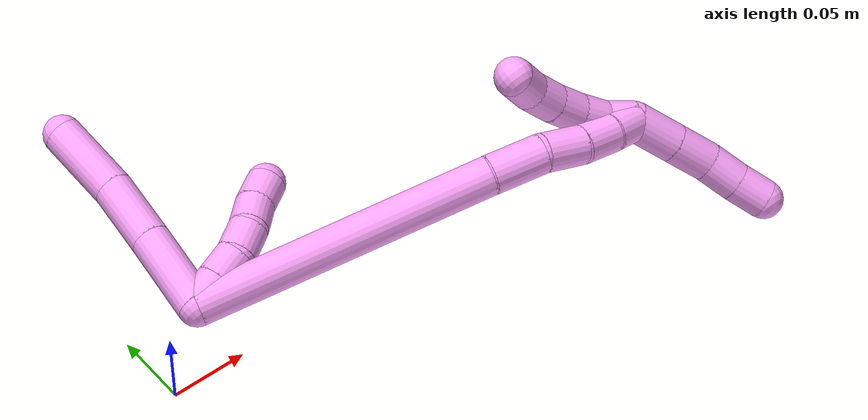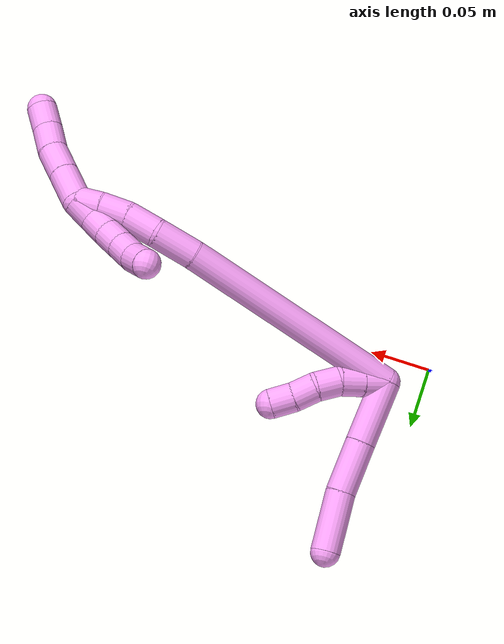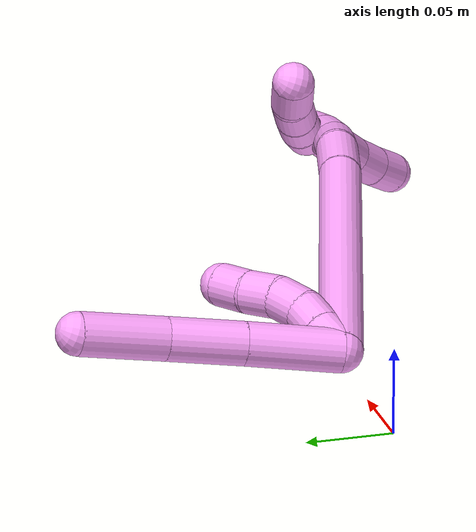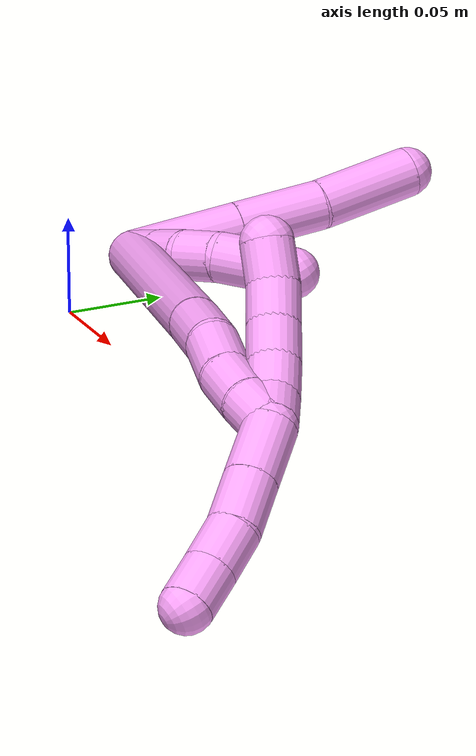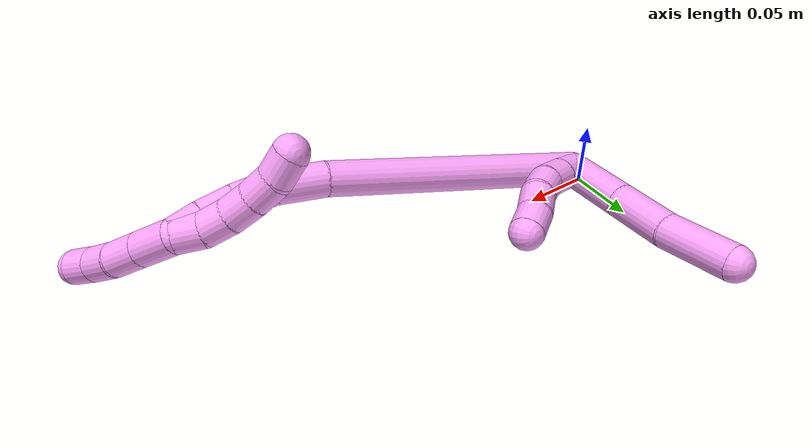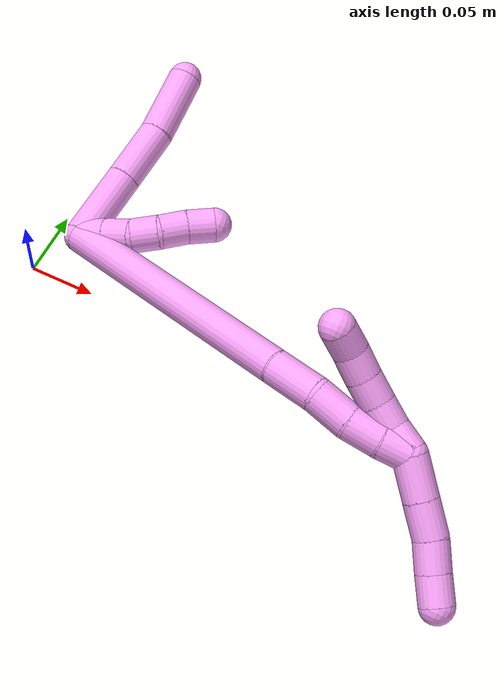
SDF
<sdf version="1.7">
 <world name="default">
  <model name="4">
   <static>0</static>
   <link name="4">
    <collision name="collision-cylinder-e_1_2_8">
     <pose>0.007211 0.00236 0.026304 -0.089463 0.266559 -0.012003</pose>
     <geometry><cylinder><radius>0.0125</radius><length>0.054753</length></cylinder></geometry>
     <surface>
      <friction><ode><mu>1.16</mu><mu2>1.16</mu2><slip1>0</slip1><slip2>0</slip2></ode></friction>
      <contact><ode><kp>1e+06</kp><kd>1</kd><max_vel>0</max_vel><min_depth>0.001</min_depth></ode></contact>
     </surface>
    </collision>
    <visual name="visual-cylinder-e_1_2_8">
     <pose>0.007211 0.00236 0.026304 -0.089463 0.266559 -0.012003</pose>
     <geometry><cylinder><radius>0.0125</radius><length>0.054753</length></cylinder></geometry>
     <material><ambient>1 0.65098 0.996078 1</ambient></material>
    </visual>
    <collision name="collision-cylinder-e_2_8_9">
     <pose>0.020268 0.006941 0.073887 -0.104063 0.266716 -0.013973</pose>
     <geometry><cylinder><radius>0.0125</radius><length>0.044359</length></cylinder></geometry>
     <surface>
      <friction><ode><mu>1.16</mu><mu2>1.16</mu2><slip1>0</slip1><slip2>0</slip2></ode></friction>
      <contact><ode><kp>1e+06</kp><kd>1</kd><max_vel>0</max_vel><min_depth>0.001</min_depth></ode></contact>
     </surface>
    </collision>
    <visual name="visual-cylinder-e_2_8_9">
     <pose>0.020268 0.006941 0.073887 -0.104063 0.266716 -0.013973</pose>
     <geometry><cylinder><radius>0.0125</radius><length>0.044359</length></cylinder></geometry>
     <material><ambient>1 0.65098 0.996078 1</ambient></material>
    </visual>
    <collision name="collision-cylinder-e_3_9_6">
     <pose>0.029873 0.013444 0.119965 -0.17092 0.148262 -0.012725</pose>
     <geometry><cylinder><radius>0.0125</radius><length>0.050889</length></cylinder></geometry>
     <surface>
      <friction><ode><mu>1.16</mu><mu2>1.16</mu2><slip1>0</slip1><slip2>0</slip2></ode></friction>
      <contact><ode><kp>1e+06</kp><kd>1</kd><max_vel>0</max_vel><min_depth>0.001</min_depth></ode></contact>
     </surface>
    </collision>
    <visual name="visual-cylinder-e_3_9_6">
     <pose>0.029873 0.013444 0.119965 -0.17092 0.148262 -0.012725</pose>
     <geometry><cylinder><radius>0.0125</radius><length>0.050889</length></cylinder></geometry>
     <material><ambient>1 0.65098 0.996078 1</ambient></material>
    </visual>
    <collision name="collision-cylinder-e_1_2_10">
     <pose>0.005202 -0.007824 0.003423 1.15841 0.547137 0.363008</pose>
     <geometry><cylinder><radius>0.0125</radius><length>0.02</length></cylinder></geometry>
     <surface>
      <friction><ode><mu>1.16</mu><mu2>1.16</mu2><slip1>0</slip1><slip2>0</slip2></ode></friction>
      <contact><ode><kp>1e+06</kp><kd>1</kd><max_vel>0</max_vel><min_depth>0.001</min_depth></ode></contact>
     </surface>
    </collision>
    <visual name="visual-cylinder-e_1_2_10">
     <pose>0.005202 -0.007824 0.003423 1.15841 0.547137 0.363008</pose>
     <geometry><cylinder><radius>0.0125</radius><length>0.02</length></cylinder></geometry>
     <material><ambient>1 0.65098 0.996078 1</ambient></material>
    </visual>
    <collision name="collision-cylinder-e_2_10_11">
     <pose>0.015618 -0.023581 0.009991 1.19337 0.548446 0.377626</pose>
     <geometry><cylinder><radius>0.0125</radius><length>0.02</length></cylinder></geometry>
     <surface>
      <friction><ode><mu>1.16</mu><mu2>1.16</mu2><slip1>0</slip1><slip2>0</slip2></ode></friction>
      <contact><ode><kp>1e+06</kp><kd>1</kd><max_vel>0</max_vel><min_depth>0.001</min_depth></ode></contact>
     </surface>
    </collision>
    <visual name="visual-cylinder-e_2_10_11">
     <pose>0.015618 -0.023581 0.009991 1.19337 0.548446 0.377626</pose>
     <geometry><cylinder><radius>0.0125</radius><length>0.02</length></cylinder></geometry>
     <material><ambient>1 0.65098 0.996078 1</ambient></material>
    </visual>
    <collision name="collision-cylinder-e_3_11_12">
     <pose>0.027105 -0.037391 0.018244 0.855203 0.678118 0.31872</pose>
     <geometry><cylinder><radius>0.0125</radius><length>0.02</length></cylinder></geometry>
     <surface>
      <friction><ode><mu>1.16</mu><mu2>1.16</mu2><slip1>0</slip1><slip2>0</slip2></ode></friction>
      <contact><ode><kp>1e+06</kp><kd>1</kd><max_vel>0</max_vel><min_depth>0.001</min_depth></ode></contact>
     </surface>
    </collision>
    <visual name="visual-cylinder-e_3_11_12">
     <pose>0.027105 -0.037391 0.018244 0.855203 0.678118 0.31872</pose>
     <geometry><cylinder><radius>0.0125</radius><length>0.02</length></cylinder></geometry>
     <material><ambient>1 0.65098 0.996078 1</ambient></material>
    </visual>
    <collision name="collision-cylinder-e_4_12_13">
     <pose>0.040729 -0.04674 0.029178 0.537453 0.825677 0.240085</pose>
     <geometry><cylinder><radius>0.0125</radius><length>0.02</length></cylinder></geometry>
     <surface>
      <friction><ode><mu>1.16</mu><mu2>1.16</mu2><slip1>0</slip1><slip2>0</slip2></ode></friction>
      <contact><ode><kp>1e+06</kp><kd>1</kd><max_vel>0</max_vel><min_depth>0.001</min_depth></ode></contact>
     </surface>
    </collision>
    <visual name="visual-cylinder-e_4_12_13">
     <pose>0.040729 -0.04674 0.029178 0.537453 0.825677 0.240085</pose>
     <geometry><cylinder><radius>0.0125</radius><length>0.02</length></cylinder></geometry>
     <material><ambient>1 0.65098 0.996078 1</ambient></material>
    </visual>
    <collision name="collision-cylinder-e_5_13_5">
     <pose>0.055577 -0.054769 0.039799 0.759939 0.84773 0.356584</pose>
     <geometry><cylinder><radius>0.0125</radius><length>0.02</length></cylinder></geometry>
     <surface>
      <friction><ode><mu>1.16</mu><mu2>1.16</mu2><slip1>0</slip1><slip2>0</slip2></ode></friction>
      <contact><ode><kp>1e+06</kp><kd>1</kd><max_vel>0</max_vel><min_depth>0.001</min_depth></ode></contact>
     </surface>
    </collision>
    <visual name="visual-cylinder-e_5_13_5">
     <pose>0.055577 -0.054769 0.039799 0.759939 0.84773 0.356584</pose>
     <geometry><cylinder><radius>0.0125</radius><length>0.02</length></cylinder></geometry>
     <material><ambient>1 0.65098 0.996078 1</ambient></material>
    </visual>
    <collision name="collision-cylinder-e_1_2_14">
     <pose>0.041147 -0.085035 -0.018938 1.78993 0.441253 0.545499</pose>
     <geometry><cylinder><radius>0.0125</radius><length>0.192693</length></cylinder></geometry>
     <surface>
      <friction><ode><mu>1.16</mu><mu2>1.16</mu2><slip1>0</slip1><slip2>0</slip2></ode></friction>
      <contact><ode><kp>1e+06</kp><kd>1</kd><max_vel>0</max_vel><min_depth>0.001</min_depth></ode></contact>
     </surface>
    </collision>
    <visual name="visual-cylinder-e_1_2_14">
     <pose>0.041147 -0.085035 -0.018938 1.78993 0.441253 0.545499</pose>
     <geometry><cylinder><radius>0.0125</radius><length>0.192693</length></cylinder></geometry>
     <material><ambient>1 0.65098 0.996078 1</ambient></material>
    </visual>
    <collision name="collision-cylinder-e_2_14_15">
     <pose>0.091527 -0.184734 -0.041274 1.79851 0.550214 0.682517</pose>
     <geometry><cylinder><radius>0.0125</radius><length>0.035317</length></cylinder></geometry>
     <surface>
      <friction><ode><mu>1.16</mu><mu2>1.16</mu2><slip1>0</slip1><slip2>0</slip2></ode></friction>
      <contact><ode><kp>1e+06</kp><kd>1</kd><max_vel>0</max_vel><min_depth>0.001</min_depth></ode></contact>
     </surface>
    </collision>
    <visual name="visual-cylinder-e_2_14_15">
     <pose>0.091527 -0.184734 -0.041274 1.79851 0.550214 0.682517</pose>
     <geometry><cylinder><radius>0.0125</radius><length>0.035317</length></cylinder></geometry>
     <material><ambient>1 0.65098 0.996078 1</ambient></material>
    </visual>
    <collision name="collision-cylinder-e_3_15_16">
     <pose>0.110274 -0.208289 -0.048612 1.98789 0.774402 1.11965</pose>
     <geometry><cylinder><radius>0.0125</radius><length>0.027209</length></cylinder></geometry>
     <surface>
      <friction><ode><mu>1.16</mu><mu2>1.16</mu2><slip1>0</slip1><slip2>0</slip2></ode></friction>
      <contact><ode><kp>1e+06</kp><kd>1</kd><max_vel>0</max_vel><min_depth>0.001</min_depth></ode></contact>
     </surface>
    </collision>
    <visual name="visual-cylinder-e_3_15_16">
     <pose>0.110274 -0.208289 -0.048612 1.98789 0.774402 1.11965</pose>
     <geometry><cylinder><radius>0.0125</radius><length>0.027209</length></cylinder></geometry>
     <material><ambient>1 0.65098 0.996078 1</ambient></material>
    </visual>
    <collision name="collision-cylinder-e_4_16_17">
     <pose>0.128809 -0.224875 -0.053967 1.7527 0.856438 1.00274</pose>
     <geometry><cylinder><radius>0.0125</radius><length>0.023884</length></cylinder></geometry>
     <surface>
      <friction><ode><mu>1.16</mu><mu2>1.16</mu2><slip1>0</slip1><slip2>0</slip2></ode></friction>
      <contact><ode><kp>1e+06</kp><kd>1</kd><max_vel>0</max_vel><min_depth>0.001</min_depth></ode></contact>
     </surface>
    </collision>
    <visual name="visual-cylinder-e_4_16_17">
     <pose>0.128809 -0.224875 -0.053967 1.7527 0.856438 1.00274</pose>
     <geometry><cylinder><radius>0.0125</radius><length>0.023884</length></cylinder></geometry>
     <material><ambient>1 0.65098 0.996078 1</ambient></material>
    </visual>
    <collision name="collision-cylinder-e_5_17_1">
     <pose>0.146253 -0.238741 -0.055791 1.63703 0.937268 0.991724</pose>
     <geometry><cylinder><radius>0.0125</radius><length>0.020897</length></cylinder></geometry>
     <surface>
      <friction><ode><mu>1.16</mu><mu2>1.16</mu2><slip1>0</slip1><slip2>0</slip2></ode></friction>
      <contact><ode><kp>1e+06</kp><kd>1</kd><max_vel>0</max_vel><min_depth>0.001</min_depth></ode></contact>
     </surface>
    </collision>
    <visual name="visual-cylinder-e_5_17_1">
     <pose>0.146253 -0.238741 -0.055791 1.63703 0.937268 0.991724</pose>
     <geometry><cylinder><radius>0.0125</radius><length>0.020897</length></cylinder></geometry>
     <material><ambient>1 0.65098 0.996078 1</ambient></material>
    </visual>
    <collision name="collision-cylinder-e_1_1_18">
     <pose>0.148992 -0.238603 -0.050918 -0.873807 -0.604257 0.289072</pose>
     <geometry><cylinder><radius>0.0125</radius><length>0.02</length></cylinder></geometry>
     <surface>
      <friction><ode><mu>1.16</mu><mu2>1.16</mu2><slip1>0</slip1><slip2>0</slip2></ode></friction>
      <contact><ode><kp>1e+06</kp><kd>1</kd><max_vel>0</max_vel><min_depth>0.001</min_depth></ode></contact>
     </surface>
    </collision>
    <visual name="visual-cylinder-e_1_1_18">
     <pose>0.148992 -0.238603 -0.050918 -0.873807 -0.604257 0.289072</pose>
     <geometry><cylinder><radius>0.0125</radius><length>0.02</length></cylinder></geometry>
     <material><ambient>1 0.65098 0.996078 1</ambient></material>
    </visual>
    <collision name="collision-cylinder-e_2_18_19">
     <pose>0.136021 -0.22879 -0.039753 -0.537061 -0.816709 0.237009</pose>
     <geometry><cylinder><radius>0.0125</radius><length>0.02</length></cylinder></geometry>
     <surface>
      <friction><ode><mu>1.16</mu><mu2>1.16</mu2><slip1>0</slip1><slip2>0</slip2></ode></friction>
      <contact><ode><kp>1e+06</kp><kd>1</kd><max_vel>0</max_vel><min_depth>0.001</min_depth></ode></contact>
     </surface>
    </collision>
    <visual name="visual-cylinder-e_2_18_19">
     <pose>0.136021 -0.22879 -0.039753 -0.537061 -0.816709 0.237009</pose>
     <geometry><cylinder><radius>0.0125</radius><length>0.02</length></cylinder></geometry>
     <material><ambient>1 0.65098 0.996078 1</ambient></material>
    </visual>
    <collision name="collision-cylinder-e_3_19_20">
     <pose>0.120832 -0.222998 -0.028184 -0.382677 -0.910856 0.189178</pose>
     <geometry><cylinder><radius>0.0125</radius><length>0.02</length></cylinder></geometry>
     <surface>
      <friction><ode><mu>1.16</mu><mu2>1.16</mu2><slip1>0</slip1><slip2>0</slip2></ode></friction>
      <contact><ode><kp>1e+06</kp><kd>1</kd><max_vel>0</max_vel><min_depth>0.001</min_depth></ode></contact>
     </surface>
    </collision>
    <visual name="visual-cylinder-e_3_19_20">
     <pose>0.120832 -0.222998 -0.028184 -0.382677 -0.910856 0.189178</pose>
     <geometry><cylinder><radius>0.0125</radius><length>0.02</length></cylinder></geometry>
     <material><ambient>1 0.65098 0.996078 1</ambient></material>
    </visual>
    <collision name="collision-cylinder-e_4_20_21">
     <pose>0.104823 -0.219429 -0.016786 -0.220474 -0.945613 0.113111</pose>
     <geometry><cylinder><radius>0.0125</radius><length>0.02</length></cylinder></geometry>
     <surface>
      <friction><ode><mu>1.16</mu><mu2>1.16</mu2><slip1>0</slip1><slip2>0</slip2></ode></friction>
      <contact><ode><kp>1e+06</kp><kd>1</kd><max_vel>0</max_vel><min_depth>0.001</min_depth></ode></contact>
     </surface>
    </collision>
    <visual name="visual-cylinder-e_4_20_21">
     <pose>0.104823 -0.219429 -0.016786 -0.220474 -0.945613 0.113111</pose>
     <geometry><cylinder><radius>0.0125</radius><length>0.02</length></cylinder></geometry>
     <material><ambient>1 0.65098 0.996078 1</ambient></material>
    </visual>
    <collision name="collision-cylinder-e_5_21_4">
     <pose>0.087753 -0.21887 -0.006698 0.163121 -1.11117 -0.101406</pose>
     <geometry><cylinder><radius>0.0125</radius><length>0.02</length></cylinder></geometry>
     <surface>
      <friction><ode><mu>1.16</mu><mu2>1.16</mu2><slip1>0</slip1><slip2>0</slip2></ode></friction>
      <contact><ode><kp>1e+06</kp><kd>1</kd><max_vel>0</max_vel><min_depth>0.001</min_depth></ode></contact>
     </surface>
    </collision>
    <visual name="visual-cylinder-e_5_21_4">
     <pose>0.087753 -0.21887 -0.006698 0.163121 -1.11117 -0.101406</pose>
     <geometry><cylinder><radius>0.0125</radius><length>0.02</length></cylinder></geometry>
     <material><ambient>1 0.65098 0.996078 1</ambient></material>
    </visual>
    <collision name="collision-cylinder-e_1_1_22">
     <pose>0.163302 -0.248673 -0.067965 2.83218 0.609793 2.22144</pose>
     <geometry><cylinder><radius>0.0125</radius><length>0.030132</length></cylinder></geometry>
     <surface>
      <friction><ode><mu>1.16</mu><mu2>1.16</mu2><slip1>0</slip1><slip2>0</slip2></ode></friction>
      <contact><ode><kp>1e+06</kp><kd>1</kd><max_vel>0</max_vel><min_depth>0.001</min_depth></ode></contact>
     </surface>
    </collision>
    <visual name="visual-cylinder-e_1_1_22">
     <pose>0.163302 -0.248673 -0.067965 2.83218 0.609793 2.22144</pose>
     <geometry><cylinder><radius>0.0125</radius><length>0.030132</length></cylinder></geometry>
     <material><ambient>1 0.65098 0.996078 1</ambient></material>
    </visual>
    <collision name="collision-cylinder-e_2_22_23">
     <pose>0.17944 -0.255649 -0.089836 2.83363 0.616125 2.23394</pose>
     <geometry><cylinder><radius>0.0125</radius><length>0.025991</length></cylinder></geometry>
     <surface>
      <friction><ode><mu>1.16</mu><mu2>1.16</mu2><slip1>0</slip1><slip2>0</slip2></ode></friction>
      <contact><ode><kp>1e+06</kp><kd>1</kd><max_vel>0</max_vel><min_depth>0.001</min_depth></ode></contact>
     </surface>
    </collision>
    <visual name="visual-cylinder-e_2_22_23">
     <pose>0.17944 -0.255649 -0.089836 2.83363 0.616125 2.23394</pose>
     <geometry><cylinder><radius>0.0125</radius><length>0.025991</length></cylinder></geometry>
     <material><ambient>1 0.65098 0.996078 1</ambient></material>
    </visual>
    <collision name="collision-cylinder-e_3_23_24">
     <pose>0.19183 -0.261069 -0.109797 2.92148 0.450228 2.24241</pose>
     <geometry><cylinder><radius>0.0125</radius><length>0.022432</length></cylinder></geometry>
     <surface>
      <friction><ode><mu>1.16</mu><mu2>1.16</mu2><slip1>0</slip1><slip2>0</slip2></ode></friction>
      <contact><ode><kp>1e+06</kp><kd>1</kd><max_vel>0</max_vel><min_depth>0.001</min_depth></ode></contact>
     </surface>
    </collision>
    <visual name="visual-cylinder-e_3_23_24">
     <pose>0.19183 -0.261069 -0.109797 2.92148 0.450228 2.24241</pose>
     <geometry><cylinder><radius>0.0125</radius><length>0.022432</length></cylinder></geometry>
     <material><ambient>1 0.65098 0.996078 1</ambient></material>
    </visual>
    <collision name="collision-cylinder-e_4_24_3">
     <pose>0.201152 -0.266087 -0.128998 2.84921 0.427012 1.94844</pose>
     <geometry><cylinder><radius>0.0125</radius><length>0.021445</length></cylinder></geometry>
     <surface>
      <friction><ode><mu>1.16</mu><mu2>1.16</mu2><slip1>0</slip1><slip2>0</slip2></ode></friction>
      <contact><ode><kp>1e+06</kp><kd>1</kd><max_vel>0</max_vel><min_depth>0.001</min_depth></ode></contact>
     </surface>
    </collision>
    <visual name="visual-cylinder-e_4_24_3">
     <pose>0.201152 -0.266087 -0.128998 2.84921 0.427012 1.94844</pose>
     <geometry><cylinder><radius>0.0125</radius><length>0.021445</length></cylinder></geometry>
     <material><ambient>1 0.65098 0.996078 1</ambient></material>
    </visual>
    <collision name="collision-sphere-3">
     <pose>0.205593 -0.2689 -0.138343 0 -0 0</pose>
     <geometry><sphere><radius>0.0125</radius></sphere></geometry>
     <surface>
      <friction><ode><mu>1.16</mu><mu2>1.16</mu2><slip1>0</slip1><slip2>0</slip2></ode></friction>
      <contact><ode><kp>1e+06</kp><kd>1</kd><max_vel>0</max_vel><min_depth>0.001</min_depth></ode></contact>
     </surface>
    </collision>
    <visual name="visual-sphere-3">
     <pose>0.205593 -0.2689 -0.138343 0 -0 0</pose>
     <geometry><sphere><radius>0.0125</radius></sphere></geometry>
     <material><ambient>1 0.65098 0.996078 1</ambient></material>
    </visual>
    <collision name="collision-sphere-24">
     <pose>0.196711 -0.263273 -0.119652 0 -0 0</pose>
     <geometry><sphere><radius>0.0125</radius></sphere></geometry>
     <surface>
      <friction><ode><mu>1.16</mu><mu2>1.16</mu2><slip1>0</slip1><slip2>0</slip2></ode></friction>
      <contact><ode><kp>1e+06</kp><kd>1</kd><max_vel>0</max_vel><min_depth>0.001</min_depth></ode></contact>
     </surface>
    </collision>
    <visual name="visual-sphere-24">
     <pose>0.196711 -0.263273 -0.119652 0 -0 0</pose>
     <geometry><sphere><radius>0.0125</radius></sphere></geometry>
     <material><ambient>1 0.65098 0.996078 1</ambient></material>
    </visual>
    <collision name="collision-sphere-23">
     <pose>0.186949 -0.258864 -0.099942 0 -0 0</pose>
     <geometry><sphere><radius>0.0125</radius></sphere></geometry>
     <surface>
      <friction><ode><mu>1.16</mu><mu2>1.16</mu2><slip1>0</slip1><slip2>0</slip2></ode></friction>
      <contact><ode><kp>1e+06</kp><kd>1</kd><max_vel>0</max_vel><min_depth>0.001</min_depth></ode></contact>
     </surface>
    </collision>
    <visual name="visual-sphere-23">
     <pose>0.186949 -0.258864 -0.099942 0 -0 0</pose>
     <geometry><sphere><radius>0.0125</radius></sphere></geometry>
     <material><ambient>1 0.65098 0.996078 1</ambient></material>
    </visual>
    <collision name="collision-sphere-22">
     <pose>0.17193 -0.252434 -0.079729 0 -0 0</pose>
     <geometry><sphere><radius>0.0125</radius></sphere></geometry>
     <surface>
      <friction><ode><mu>1.16</mu><mu2>1.16</mu2><slip1>0</slip1><slip2>0</slip2></ode></friction>
      <contact><ode><kp>1e+06</kp><kd>1</kd><max_vel>0</max_vel><min_depth>0.001</min_depth></ode></contact>
     </surface>
    </collision>
    <visual name="visual-sphere-22">
     <pose>0.17193 -0.252434 -0.079729 0 -0 0</pose>
     <geometry><sphere><radius>0.0125</radius></sphere></geometry>
     <material><ambient>1 0.65098 0.996078 1</ambient></material>
    </visual>
    <collision name="collision-sphere-4">
     <pose>0.07879 -0.21959 -0.00232 0 -0 0</pose>
     <geometry><sphere><radius>0.0125</radius></sphere></geometry>
     <surface>
      <friction><ode><mu>1.16</mu><mu2>1.16</mu2><slip1>0</slip1><slip2>0</slip2></ode></friction>
      <contact><ode><kp>1e+06</kp><kd>1</kd><max_vel>0</max_vel><min_depth>0.001</min_depth></ode></contact>
     </surface>
    </collision>
    <visual name="visual-sphere-4">
     <pose>0.07879 -0.21959 -0.00232 0 -0 0</pose>
     <geometry><sphere><radius>0.0125</radius></sphere></geometry>
     <material><ambient>1 0.65098 0.996078 1</ambient></material>
    </visual>
    <collision name="collision-sphere-21">
     <pose>0.096715 -0.218149 -0.011075 0 -0 0</pose>
     <geometry><sphere><radius>0.0125</radius></sphere></geometry>
     <surface>
      <friction><ode><mu>1.16</mu><mu2>1.16</mu2><slip1>0</slip1><slip2>0</slip2></ode></friction>
      <contact><ode><kp>1e+06</kp><kd>1</kd><max_vel>0</max_vel><min_depth>0.001</min_depth></ode></contact>
     </surface>
    </collision>
    <visual name="visual-sphere-21">
     <pose>0.096715 -0.218149 -0.011075 0 -0 0</pose>
     <geometry><sphere><radius>0.0125</radius></sphere></geometry>
     <material><ambient>1 0.65098 0.996078 1</ambient></material>
    </visual>
    <collision name="collision-sphere-20">
     <pose>0.112932 -0.220709 -0.022496 0 -0 0</pose>
     <geometry><sphere><radius>0.0125</radius></sphere></geometry>
     <surface>
      <friction><ode><mu>1.16</mu><mu2>1.16</mu2><slip1>0</slip1><slip2>0</slip2></ode></friction>
      <contact><ode><kp>1e+06</kp><kd>1</kd><max_vel>0</max_vel><min_depth>0.001</min_depth></ode></contact>
     </surface>
    </collision>
    <visual name="visual-sphere-20">
     <pose>0.112932 -0.220709 -0.022496 0 -0 0</pose>
     <geometry><sphere><radius>0.0125</radius></sphere></geometry>
     <material><ambient>1 0.65098 0.996078 1</ambient></material>
    </visual>
    <collision name="collision-sphere-11">
     <pose>0.020832 -0.031514 0.013135 0 -0 0</pose>
     <geometry><sphere><radius>0.0125</radius></sphere></geometry>
     <surface>
      <friction><ode><mu>1.16</mu><mu2>1.16</mu2><slip1>0</slip1><slip2>0</slip2></ode></friction>
      <contact><ode><kp>1e+06</kp><kd>1</kd><max_vel>0</max_vel><min_depth>0.001</min_depth></ode></contact>
     </surface>
    </collision>
    <visual name="visual-sphere-11">
     <pose>0.020832 -0.031514 0.013135 0 -0 0</pose>
     <geometry><sphere><radius>0.0125</radius></sphere></geometry>
     <material><ambient>1 0.65098 0.996078 1</ambient></material>
    </visual>
    <collision name="collision-sphere-10">
     <pose>0.010405 -0.015648 0.006846 0 -0 0</pose>
     <geometry><sphere><radius>0.0125</radius></sphere></geometry>
     <surface>
      <friction><ode><mu>1.16</mu><mu2>1.16</mu2><slip1>0</slip1><slip2>0</slip2></ode></friction>
      <contact><ode><kp>1e+06</kp><kd>1</kd><max_vel>0</max_vel><min_depth>0.001</min_depth></ode></contact>
     </surface>
    </collision>
    <visual name="visual-sphere-10">
     <pose>0.010405 -0.015648 0.006846 0 -0 0</pose>
     <geometry><sphere><radius>0.0125</radius></sphere></geometry>
     <material><ambient>1 0.65098 0.996078 1</ambient></material>
    </visual>
    <collision name="collision-sphere-6">
     <pose>0.033631 0.017725 0.144763 0 -0 0</pose>
     <geometry><sphere><radius>0.0125</radius></sphere></geometry>
     <surface>
      <friction><ode><mu>1.16</mu><mu2>1.16</mu2><slip1>0</slip1><slip2>0</slip2></ode></friction>
      <contact><ode><kp>1e+06</kp><kd>1</kd><max_vel>0</max_vel><min_depth>0.001</min_depth></ode></contact>
     </surface>
    </collision>
    <visual name="visual-sphere-6">
     <pose>0.033631 0.017725 0.144763 0 -0 0</pose>
     <geometry><sphere><radius>0.0125</radius></sphere></geometry>
     <material><ambient>1 0.65098 0.996078 1</ambient></material>
    </visual>
    <collision name="collision-sphere-9">
     <pose>0.026114 0.009164 0.095167 0 -0 0</pose>
     <geometry><sphere><radius>0.0125</radius></sphere></geometry>
     <surface>
      <friction><ode><mu>1.16</mu><mu2>1.16</mu2><slip1>0</slip1><slip2>0</slip2></ode></friction>
      <contact><ode><kp>1e+06</kp><kd>1</kd><max_vel>0</max_vel><min_depth>0.001</min_depth></ode></contact>
     </surface>
    </collision>
    <visual name="visual-sphere-9">
     <pose>0.026114 0.009164 0.095167 0 -0 0</pose>
     <geometry><sphere><radius>0.0125</radius></sphere></geometry>
     <material><ambient>1 0.65098 0.996078 1</ambient></material>
    </visual>
    <collision name="collision-sphere-2">
     <geometry><sphere><radius>0.0125</radius></sphere></geometry>
     <surface>
      <friction><ode><mu>1.16</mu><mu2>1.16</mu2><slip1>0</slip1><slip2>0</slip2></ode></friction>
      <contact><ode><kp>1e+06</kp><kd>1</kd><max_vel>0</max_vel><min_depth>0.001</min_depth></ode></contact>
     </surface>
    </collision>
    <visual name="visual-sphere-2">
     <geometry><sphere><radius>0.0125</radius></sphere></geometry>
     <material><ambient>1 0.65098 0.996078 1</ambient></material>
    </visual>
    <collision name="collision-sphere-19">
     <pose>0.128732 -0.225288 -0.033871 0 -0 0</pose>
     <geometry><sphere><radius>0.0125</radius></sphere></geometry>
     <surface>
      <friction><ode><mu>1.16</mu><mu2>1.16</mu2><slip1>0</slip1><slip2>0</slip2></ode></friction>
      <contact><ode><kp>1e+06</kp><kd>1</kd><max_vel>0</max_vel><min_depth>0.001</min_depth></ode></contact>
     </surface>
    </collision>
    <visual name="visual-sphere-19">
     <pose>0.128732 -0.225288 -0.033871 0 -0 0</pose>
     <geometry><sphere><radius>0.0125</radius></sphere></geometry>
     <material><ambient>1 0.65098 0.996078 1</ambient></material>
    </visual>
    <collision name="collision-sphere-8">
     <pose>0.014423 0.004719 0.052608 0 -0 0</pose>
     <geometry><sphere><radius>0.0125</radius></sphere></geometry>
     <surface>
      <friction><ode><mu>1.16</mu><mu2>1.16</mu2><slip1>0</slip1><slip2>0</slip2></ode></friction>
      <contact><ode><kp>1e+06</kp><kd>1</kd><max_vel>0</max_vel><min_depth>0.001</min_depth></ode></contact>
     </surface>
    </collision>
    <visual name="visual-sphere-8">
     <pose>0.014423 0.004719 0.052608 0 -0 0</pose>
     <geometry><sphere><radius>0.0125</radius></sphere></geometry>
     <material><ambient>1 0.65098 0.996078 1</ambient></material>
    </visual>
    <collision name="collision-sphere-12">
     <pose>0.033379 -0.043269 0.023354 0 -0 0</pose>
     <geometry><sphere><radius>0.0125</radius></sphere></geometry>
     <surface>
      <friction><ode><mu>1.16</mu><mu2>1.16</mu2><slip1>0</slip1><slip2>0</slip2></ode></friction>
      <contact><ode><kp>1e+06</kp><kd>1</kd><max_vel>0</max_vel><min_depth>0.001</min_depth></ode></contact>
     </surface>
    </collision>
    <visual name="visual-sphere-12">
     <pose>0.033379 -0.043269 0.023354 0 -0 0</pose>
     <geometry><sphere><radius>0.0125</radius></sphere></geometry>
     <material><ambient>1 0.65098 0.996078 1</ambient></material>
    </visual>
    <collision name="collision-sphere-13">
     <pose>0.048079 -0.050211 0.035003 0 -0 0</pose>
     <geometry><sphere><radius>0.0125</radius></sphere></geometry>
     <surface>
      <friction><ode><mu>1.16</mu><mu2>1.16</mu2><slip1>0</slip1><slip2>0</slip2></ode></friction>
      <contact><ode><kp>1e+06</kp><kd>1</kd><max_vel>0</max_vel><min_depth>0.001</min_depth></ode></contact>
     </surface>
    </collision>
    <visual name="visual-sphere-13">
     <pose>0.048079 -0.050211 0.035003 0 -0 0</pose>
     <geometry><sphere><radius>0.0125</radius></sphere></geometry>
     <material><ambient>1 0.65098 0.996078 1</ambient></material>
    </visual>
    <collision name="collision-sphere-5">
     <pose>0.063074 -0.059328 0.044596 0 -0 0</pose>
     <geometry><sphere><radius>0.0125</radius></sphere></geometry>
     <surface>
      <friction><ode><mu>1.16</mu><mu2>1.16</mu2><slip1>0</slip1><slip2>0</slip2></ode></friction>
      <contact><ode><kp>1e+06</kp><kd>1</kd><max_vel>0</max_vel><min_depth>0.001</min_depth></ode></contact>
     </surface>
    </collision>
    <visual name="visual-sphere-5">
     <pose>0.063074 -0.059328 0.044596 0 -0 0</pose>
     <geometry><sphere><radius>0.0125</radius></sphere></geometry>
     <material><ambient>1 0.65098 0.996078 1</ambient></material>
    </visual>
    <collision name="collision-sphere-14">
     <pose>0.082294 -0.17007 -0.037876 0 -0 0</pose>
     <geometry><sphere><radius>0.0125</radius></sphere></geometry>
     <surface>
      <friction><ode><mu>1.16</mu><mu2>1.16</mu2><slip1>0</slip1><slip2>0</slip2></ode></friction>
      <contact><ode><kp>1e+06</kp><kd>1</kd><max_vel>0</max_vel><min_depth>0.001</min_depth></ode></contact>
     </surface>
    </collision>
    <visual name="visual-sphere-14">
     <pose>0.082294 -0.17007 -0.037876 0 -0 0</pose>
     <geometry><sphere><radius>0.0125</radius></sphere></geometry>
     <material><ambient>1 0.65098 0.996078 1</ambient></material>
    </visual>
    <collision name="collision-sphere-15">
     <pose>0.10076 -0.199398 -0.044672 0 -0 0</pose>
     <geometry><sphere><radius>0.0125</radius></sphere></geometry>
     <surface>
      <friction><ode><mu>1.16</mu><mu2>1.16</mu2><slip1>0</slip1><slip2>0</slip2></ode></friction>
      <contact><ode><kp>1e+06</kp><kd>1</kd><max_vel>0</max_vel><min_depth>0.001</min_depth></ode></contact>
     </surface>
    </collision>
    <visual name="visual-sphere-15">
     <pose>0.10076 -0.199398 -0.044672 0 -0 0</pose>
     <geometry><sphere><radius>0.0125</radius></sphere></geometry>
     <material><ambient>1 0.65098 0.996078 1</ambient></material>
    </visual>
    <collision name="collision-sphere-16">
     <pose>0.119787 -0.21718 -0.052551 0 -0 0</pose>
     <geometry><sphere><radius>0.0125</radius></sphere></geometry>
     <surface>
      <friction><ode><mu>1.16</mu><mu2>1.16</mu2><slip1>0</slip1><slip2>0</slip2></ode></friction>
      <contact><ode><kp>1e+06</kp><kd>1</kd><max_vel>0</max_vel><min_depth>0.001</min_depth></ode></contact>
     </surface>
    </collision>
    <visual name="visual-sphere-16">
     <pose>0.119787 -0.21718 -0.052551 0 -0 0</pose>
     <geometry><sphere><radius>0.0125</radius></sphere></geometry>
     <material><ambient>1 0.65098 0.996078 1</ambient></material>
    </visual>
    <collision name="collision-sphere-17">
     <pose>0.137832 -0.232569 -0.055382 0 -0 0</pose>
     <geometry><sphere><radius>0.0125</radius></sphere></geometry>
     <surface>
      <friction><ode><mu>1.16</mu><mu2>1.16</mu2><slip1>0</slip1><slip2>0</slip2></ode></friction>
      <contact><ode><kp>1e+06</kp><kd>1</kd><max_vel>0</max_vel><min_depth>0.001</min_depth></ode></contact>
     </surface>
    </collision>
    <visual name="visual-sphere-17">
     <pose>0.137832 -0.232569 -0.055382 0 -0 0</pose>
     <geometry><sphere><radius>0.0125</radius></sphere></geometry>
     <material><ambient>1 0.65098 0.996078 1</ambient></material>
    </visual>
    <collision name="collision-sphere-1">
     <pose>0.154673 -0.244913 -0.056201 0 -0 0</pose>
     <geometry><sphere><radius>0.0125</radius></sphere></geometry>
     <surface>
      <friction><ode><mu>1.16</mu><mu2>1.16</mu2><slip1>0</slip1><slip2>0</slip2></ode></friction>
      <contact><ode><kp>1e+06</kp><kd>1</kd><max_vel>0</max_vel><min_depth>0.001</min_depth></ode></contact>
     </surface>
    </collision>
    <visual name="visual-sphere-1">
     <pose>0.154673 -0.244913 -0.056201 0 -0 0</pose>
     <geometry><sphere><radius>0.0125</radius></sphere></geometry>
     <material><ambient>1 0.65098 0.996078 1</ambient></material>
    </visual>
    <collision name="collision-sphere-18">
     <pose>0.14331 -0.232293 -0.045636 0 -0 0</pose>
     <geometry><sphere><radius>0.0125</radius></sphere></geometry>
     <surface>
      <friction><ode><mu>1.16</mu><mu2>1.16</mu2><slip1>0</slip1><slip2>0</slip2></ode></friction>
      <contact><ode><kp>1e+06</kp><kd>1</kd><max_vel>0</max_vel><min_depth>0.001</min_depth></ode></contact>
     </surface>
    </collision>
    <visual name="visual-sphere-18">
     <pose>0.14331 -0.232293 -0.045636 0 -0 0</pose>
     <geometry><sphere><radius>0.0125</radius></sphere></geometry>
     <material><ambient>1 0.65098 0.996078 1</ambient></material>
    </visual>
    <inertial>
     <pose>0.074884 -0.119328 -0.011344 0 -0 0</pose>
     <mass>0.75</mass>
     <inertia>
      <ixx>0.00083</ixx>
      <ixy>0</ixy>
      <ixz>0</ixz>
      <iyy>0.000354</iyy>
      <iyz>0</iyz>
      <izz>0.000272</izz>
     </inertia>
    </inertial>
   </link>
   <pose>0.033412 0.020308 0.038264 -1.00821 0.74202 0.425793</pose>
  </model>
 </world>
</sdf>
